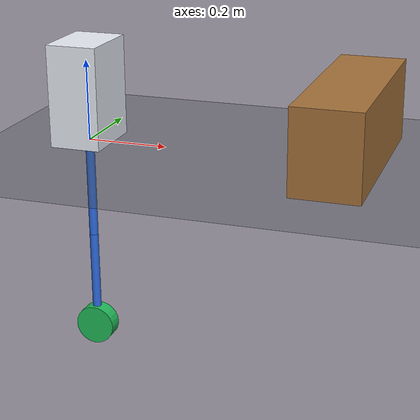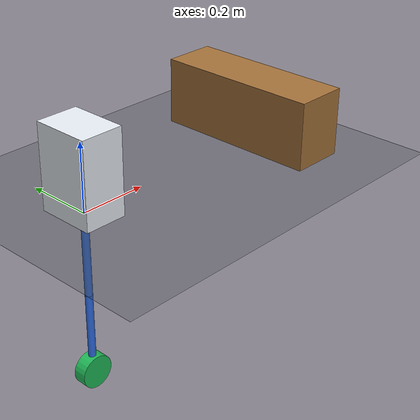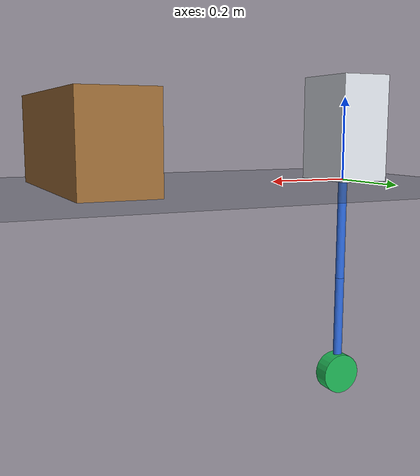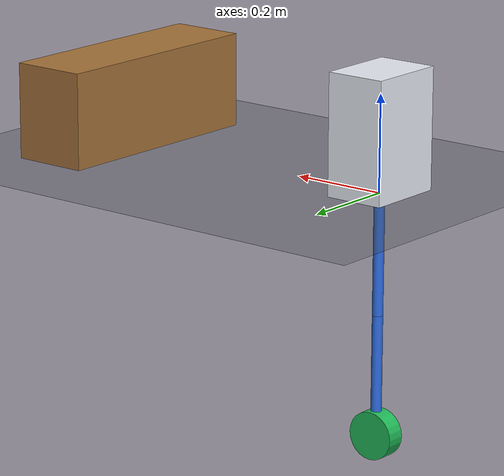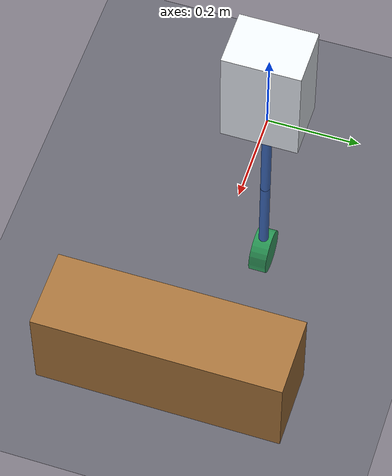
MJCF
<mujoco model="planar-wheelbot-full-contact-configured">
  <compiler angle="radian" inertiafromgeom="false" />
  <option timestep="0.002" integrator="Euler" gravity="0 0 -9.81" cone="elliptic" impratio="10" />
  <size njmax="1000" nconmax="100" />
  <default>
    <joint damping="0" armature="0" limited="false" />
    <geom condim="3" friction="1 0.01 0.001" solref="0.01 1" solimp="0.95 0.99 0.001" />
    <motor ctrllimited="true" />
  </default>
  <worldbody>
    <light pos="0 -2 3" dir="0 1 -1" diffuse="0.8 0.8 0.8" />
    <geom name="floor" type="plane" pos="0 0 0" size="5 2 0.1" rgba="0.25 0.28 0.31 1" />
    <geom name="obstacle" type="box" pos="0.65 0 0.1" size="0.08 0.25 0.1" rgba="0.65 0.45 0.23 1" contype="1" conaffinity="1"/>
    <body name="torso" pos="0 0 0">
      <joint name="x" type="slide" axis="1 0 0" />
      <joint name="z" type="slide" axis="0 0 1" />
      <joint name="pitch" type="hinge" axis="0 1 0" />
      <inertial pos="0 0 0.125" mass="1" diaginertia="0.007616666666666667 0.006510416666666667 0.0037104166666666674" />
      <geom name="torso_visual" type="box" pos="0 0 0.125" size="0.0625 0.085 0.125" mass="0" rgba="0.92 0.94 0.97 1" contype="1" conaffinity="1" />
      <site name="hip_site" pos="0 0 0" size="0.012" rgba="1 0.1 0.1 1" />
      <body name="upper_link" pos="0 0 0">
        <joint name="hip" type="hinge" axis="0 1 0" damping="0.015" armature="0.0002" range="-1.26 1.26" limited="true" />
        <inertial pos="0 0 -0.125" mass="0.056" diaginertia="0.0002933606666666667 0.0002933606666666667 0.000003388" />
        <geom name="upper_link_visual" type="cylinder" pos="0 0 -0.125" size="0.011 0.125" mass="0" rgba="0.18 0.42 0.88 1" contype="1" conaffinity="1" />
        <body name="lower_link" pos="0 0 -0.25">
          <joint name="knee" type="hinge" axis="0 1 0" damping="0.015" armature="0.0002" range="-2.51 2.51" limited="true" />
          <inertial pos="0 0 -0.125" mass="0.056" diaginertia="0.0002933606666666667 0.0002933606666666667 0.000003388" />
          <geom name="lower_link_visual" type="cylinder" pos="0 0 -0.125" size="0.011 0.125" mass="0" rgba="0.18 0.42 0.88 1" contype="1" conaffinity="1" />
          <site name="knee_site" pos="0 0 0" size="0.01" rgba="1 0.1 0.1 1" />
          <body name="wheel_body" pos="0 0 -0.25">
            <joint name="wheel" type="hinge" axis="0 1 0" damping="0.015" armature="0.0002" />
            <inertial pos="0 0 0" mass="0.08715" diaginertia="0.00006608875000000002 0.00010893750000000001 0.00006608875000000002" />
            <geom name="wheel_visual" type="cylinder" size="0.05 0.02" quat="0.7071067811865476 0.7071067811865475 0 0" mass="0" rgba="0.12 0.72 0.34 1" contype="1" conaffinity="1" />
            <site name="wheel_site" pos="0 0 0" size="0.008" rgba="0.1 0.9 0.3 1" />
          </body>
        </body>
      </body>
    </body>
  </worldbody>
  <actuator>
    <motor name="hip_motor" joint="hip" gear="1" ctrlrange="-16 16" forcelimited="true" forcerange="-16 16" />
    <motor name="knee_motor" joint="knee" gear="1" ctrlrange="-16 16" forcelimited="true" forcerange="-16 16" />
    <motor name="wheel_motor" joint="wheel" gear="1" ctrlrange="-1.7 1.7" forcelimited="true" forcerange="-1.7 1.7" />
  </actuator>
  <keyframe>
    <key name="home" qpos="0 0.5443855389680211 0 0.15 -0.3 0" />
  </keyframe>
</mujoco>
